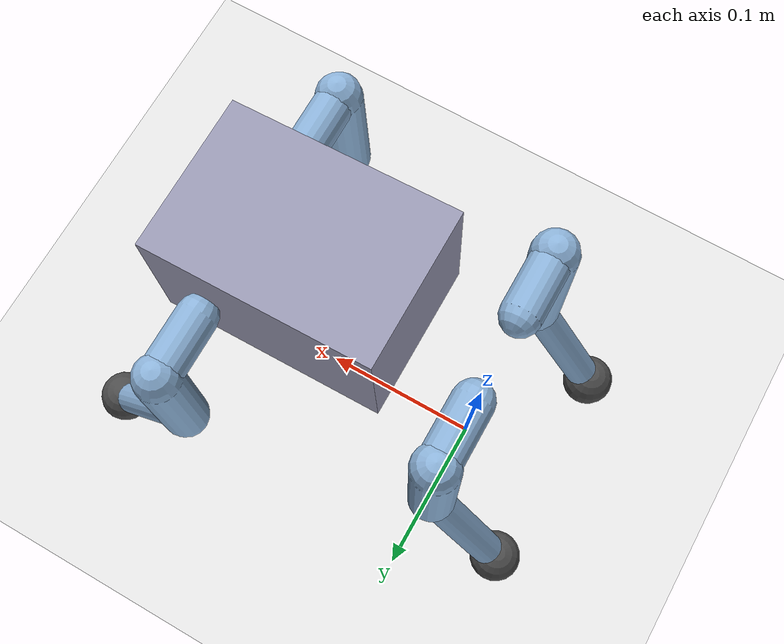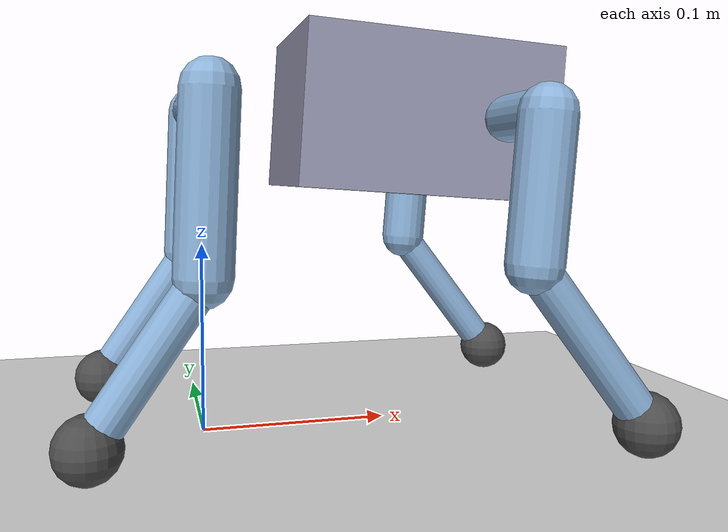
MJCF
<mujoco model="koala_walking_crude">
  <!-- CRUDE model generated by koala_hardware/mjcf.py from koala-bot CAD (walking pose). Primitive geoms, not print meshes. -->
  <!-- masses: solid-PETG/TPU upper bounds x volume + 55 g per servo [SPEC]; no battery, electronics, head, cables -->
  <!-- joint ranges: shared-control clearance bounds from viewer-endpoints.json, NOT servo limits -->
  <!-- actuator: Open Duck 7.4 V BAM placeholder, NOT the 12 V unit -->
  <!-- CAD "right" is +Y (params.py:303 body +Y right). With X forward / Z up that is the robot LEFT in a right-handed frame; names below follow the CAD. -->
  <compiler angle="degree"/>
  <option timestep="0.002"/>
  <default>
    <default class="sts3215">
      <joint type="hinge" damping="0.56" frictionloss="0.068" armature="0.027" limited="true"/>
      <position kp="13.37" forcerange="-3.23 3.23"/>
    </default>
    <default class="link"><geom type="capsule" contype="0" conaffinity="0" rgba="0.55 0.7 0.85 1"/></default>
    <default class="foot"><geom type="sphere" contype="1" conaffinity="1" condim="3" friction="0.8" rgba="0.3 0.3 0.3 1"/></default>
  </default>
  <worldbody>
    <light pos="0 0 2" dir="0 0 -1" directional="true"/>
    <geom name="floor" type="plane" size="0 0 0.05" contype="1" conaffinity="1" friction="0.8" rgba="0.9 0.9 0.9 1"/>
    <body name="torso" pos="0.000000 0.000000 0.175000">
      <freejoint name="floating_base"/>
      <site name="imu" pos="0.06 0 0.02"/>
      <geom name="torso_box" type="box" size="0.041000 0.047000 0.068693" pos="0.114552 0.000000 -0.007654" euler="0 93.8226 0" mass="0.5990" contype="0" conaffinity="0" rgba="0.6 0.6 0.7 1"/>
      <body name="rear_right_carrier" pos="0.000000 0.026250 0.000000">
        <joint name="rear_right_hip_pitch" class="sts3215" axis="0.000000 1.000000 0.000000" range="-43.5 107.5"/>
        <geom class="link" size="0.012" fromto="0 0 0 0.000000 0.040050 0.000000" mass="0.1015"/>
        <body name="rear_right_upper" pos="0.000000 0.040050 0.000000">
          <joint name="rear_right_hip_roll" class="sts3215" axis="0.998944 0.000000 -0.045940" range="-16.0 29.25"/>
          <geom class="link" size="0.014" fromto="0 0 0 -0.003905 0.000000 -0.084910" mass="0.1128"/>
          <body name="rear_right_lower" pos="-0.003905 0.000000 -0.084910">
            <joint name="rear_right_knee" class="sts3215" axis="0 1 0" range="-61.25 89.25"/>
            <geom class="link" size="0.01" fromto="0 0 0 -0.051095 0.000000 -0.074090" mass="0.0451"/>
            <geom name="rear_right_pad" class="foot" size="0.0160" pos="-0.051095 0.000000 -0.074090" mass="0.0120"/>
            <site name="rear_right_foot" pos="-0.051095 0.000000 -0.074090"/>
          </body>
        </body>
      </body>
      <body name="rear_left_carrier" pos="0.000000 -0.026250 0.000000">
        <joint name="rear_left_hip_pitch" class="sts3215" axis="0.000000 1.000000 0.000000" range="-43.5 107.5"/>
        <geom class="link" size="0.012" fromto="0 0 0 0.000000 -0.040050 0.000000" mass="0.1015"/>
        <body name="rear_left_upper" pos="0.000000 -0.040050 0.000000">
          <joint name="rear_left_hip_roll" class="sts3215" axis="-0.998944 0.000000 0.045940" range="-16.0 29.25"/>
          <geom class="link" size="0.014" fromto="0 0 0 -0.003905 0.000000 -0.084910" mass="0.1128"/>
          <body name="rear_left_lower" pos="-0.003905 0.000000 -0.084910">
            <joint name="rear_left_knee" class="sts3215" axis="0 1 0" range="-61.25 89.25"/>
            <geom class="link" size="0.01" fromto="0 0 0 -0.051095 0.000000 -0.074090" mass="0.0451"/>
            <geom name="rear_left_pad" class="foot" size="0.0160" pos="-0.051095 0.000000 -0.074090" mass="0.0120"/>
            <site name="rear_left_foot" pos="-0.051095 0.000000 -0.074090"/>
          </body>
        </body>
      </body>
      <body name="front_right_carrier" pos="0.149666 0.055115 -0.010000">
        <joint name="front_right_shoulder_roll" class="sts3215" axis="0.997775 0.000000 -0.066667" range="-16.0 29.25"/>
        <geom class="link" size="0.012" fromto="0 0 0 0.000000 0.040000 0.000000" mass="0.1058"/>
        <body name="front_right_upper" pos="0.000000 0.040000 0.000000">
          <joint name="front_right_shoulder_pitch" class="sts3215" axis="0.000000 1.000000 0.000000" range="-43.5 107.5"/>
          <geom class="link" size="0.014" fromto="0 0 0 -0.005679 0.000000 -0.069769" mass="0.0936"/>
          <body name="front_right_lower" pos="-0.005679 0.000000 -0.069769">
            <joint name="front_right_elbow" class="sts3215" axis="0 1 0" range="-61.25 89.25"/>
            <geom class="link" size="0.01" fromto="0 0 0 0.061012 0.000000 -0.079231" mass="0.0539"/>
            <geom name="front_right_pad" class="foot" size="0.0160" pos="0.061012 0.000000 -0.079231" mass="0.0120"/>
            <site name="front_right_foot" pos="0.061012 0.000000 -0.079231"/>
          </body>
        </body>
      </body>
      <body name="front_left_carrier" pos="0.149666 -0.055115 -0.010000">
        <joint name="front_left_shoulder_roll" class="sts3215" axis="-0.997775 -0.000000 0.066667" range="-16.0 29.25"/>
        <geom class="link" size="0.012" fromto="0 0 0 0.000000 -0.040000 0.000000" mass="0.1058"/>
        <body name="front_left_upper" pos="0.000000 -0.040000 0.000000">
          <joint name="front_left_shoulder_pitch" class="sts3215" axis="0.000000 1.000000 0.000000" range="-43.5 107.5"/>
          <geom class="link" size="0.014" fromto="0 0 0 -0.005679 0.000000 -0.069769" mass="0.0936"/>
          <body name="front_left_lower" pos="-0.005679 0.000000 -0.069769">
            <joint name="front_left_elbow" class="sts3215" axis="0 1 0" range="-61.25 89.25"/>
            <geom class="link" size="0.01" fromto="0 0 0 0.061012 0.000000 -0.079231" mass="0.0539"/>
            <geom name="front_left_pad" class="foot" size="0.0160" pos="0.061012 0.000000 -0.079231" mass="0.0120"/>
            <site name="front_left_foot" pos="0.061012 0.000000 -0.079231"/>
          </body>
        </body>
      </body>
    </body>
  </worldbody>
  <actuator>
    <position class="sts3215" name="rear_right_hip_pitch" joint="rear_right_hip_pitch" inheritrange="1"/>
    <position class="sts3215" name="rear_right_hip_roll" joint="rear_right_hip_roll" inheritrange="1"/>
    <position class="sts3215" name="rear_right_knee" joint="rear_right_knee" inheritrange="1"/>
    <position class="sts3215" name="rear_left_hip_pitch" joint="rear_left_hip_pitch" inheritrange="1"/>
    <position class="sts3215" name="rear_left_hip_roll" joint="rear_left_hip_roll" inheritrange="1"/>
    <position class="sts3215" name="rear_left_knee" joint="rear_left_knee" inheritrange="1"/>
    <position class="sts3215" name="front_right_shoulder_roll" joint="front_right_shoulder_roll" inheritrange="1"/>
    <position class="sts3215" name="front_right_shoulder_pitch" joint="front_right_shoulder_pitch" inheritrange="1"/>
    <position class="sts3215" name="front_right_elbow" joint="front_right_elbow" inheritrange="1"/>
    <position class="sts3215" name="front_left_shoulder_roll" joint="front_left_shoulder_roll" inheritrange="1"/>
    <position class="sts3215" name="front_left_shoulder_pitch" joint="front_left_shoulder_pitch" inheritrange="1"/>
    <position class="sts3215" name="front_left_elbow" joint="front_left_elbow" inheritrange="1"/>
  </actuator>
  <sensor>
    <gyro site="imu" name="gyro"/><accelerometer site="imu" name="accelerometer"/><framezaxis objtype="site" objname="imu" name="upvector"/>
    <framepos objtype="site" objname="rear_right_foot" name="rear_right_foot_pos"/>
    <framepos objtype="site" objname="rear_left_foot" name="rear_left_foot_pos"/>
    <framepos objtype="site" objname="front_right_foot" name="front_right_foot_pos"/>
    <framepos objtype="site" objname="front_left_foot" name="front_left_foot_pos"/>
  </sensor>
  <keyframe>
    <key name="home" qpos="0.000000 0.000000 0.175000 1 0 0 0 0 0 0 0 0 0 0 0 0 0 0 0" ctrl="0 0 0 0 0 0 0 0 0 0 0 0"/>
  </keyframe>
</mujoco>
